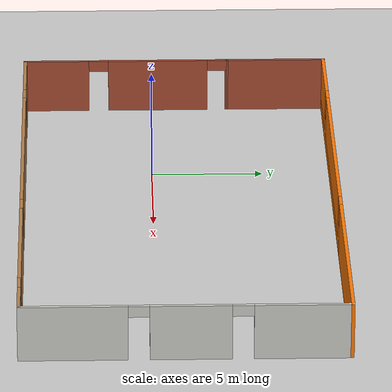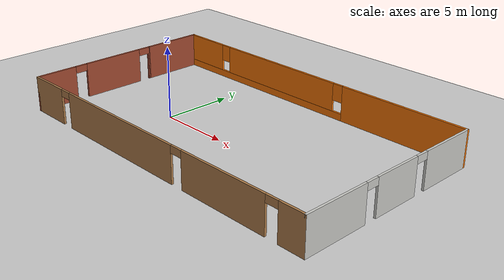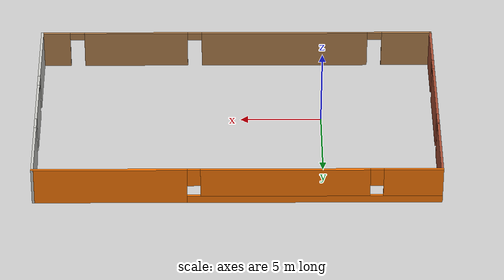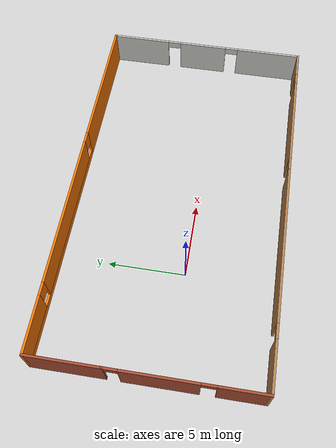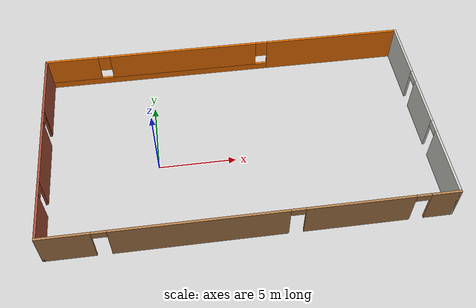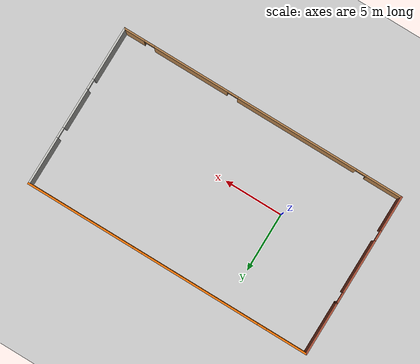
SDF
<sdf version="1.7">
 <world name="default">
  <light name="sun" type="directional">
   <pose>0 0 10 0 -0 0</pose>
   <diffuse>0.8 0.8 0.8 1</diffuse>
   <specular>0.2 0.2 0.2 1</specular>
   <attenuation>
    <range>1000</range>
    <constant>0.9</constant>
    <linear>0.01</linear>
    <quadratic>0.001</quadratic>
   </attenuation>
   <direction>-0.5 0.1 -0.9</direction>
   <spot><inner_angle>0</inner_angle><outer_angle>0</outer_angle><falloff>0</falloff></spot>
  </light>
  <model name="ground_plane">
   <static>1</static>
   <link name="link">
    <collision name="collision">
     <geometry><plane><normal>0 0 1</normal><size>100 100</size></plane></geometry>
     <surface><friction><ode><mu>100</mu><mu2>50</mu2></ode></friction></surface>
    </collision>
    <visual name="visual">
     <cast_shadows>0</cast_shadows>
     <geometry><plane><normal>0 0 1</normal><size>100 100</size></plane></geometry>
     <material>
      <script><uri>file://media/materials/scripts/gazebo.material</uri><name>Gazebo/Grey</name></script>
     </material>
    </visual>
   </link>
  </model>
  <gravity>0 0 -9.8</gravity>
  <magnetic_field>6e-06 2.3e-05 -4.2e-05</magnetic_field>
  <atmosphere type="adiabatic"/>
  <physics type="ode">
   <max_step_size>0.001</max_step_size>
   <real_time_factor>1</real_time_factor>
   <real_time_update_rate>1000</real_time_update_rate>
  </physics>
  <scene><ambient>0.4 0.4 0.4 1</ambient><background>0.7 0.7 0.7 1</background><shadows>1</shadows></scene>
  <audio><device>default</device></audio>
  <spherical_coordinates>
   <surface_model>EARTH_WGS84</surface_model>
   <latitude_deg>0</latitude_deg>
   <longitude_deg>0</longitude_deg>
   <elevation>0</elevation>
   <heading_deg>0</heading_deg>
  </spherical_coordinates>
  <model name="Untitled">
   <pose>5.26504 1.15785 0 0 -0 0</pose>
   <link name="Wall_3">
    <pose>-12.3 -2.25 0 0 -0 -1.5708</pose>
    <visual name="Wall_3_Visual_0">
     <pose>-4.71369 0 1.25 0 -0 0</pose>
     <geometry><box><size>0.072627 0.15 2.5</size></box></geometry>
     <material>
      <script><uri>file://media/materials/scripts/gazebo.material</uri><name>Gazebo/Bricks</name></script>
      <ambient>1 1 1 1</ambient>
     </material>
     <meta><layer>0</layer></meta>
    </visual>
    <collision name="Wall_3_Collision_0">
     <geometry><box><size>0.072627 0.15 2.5</size></box></geometry>
     <pose>-4.71369 0 1.25 0 -0 0</pose>
    </collision>
    <visual name="Wall_3_Visual_1">
     <pose>-1.47639 0 1.25 0 -0 0</pose>
     <geometry><box><size>4.60196 0.15 2.5</size></box></geometry>
     <material>
      <script><uri>file://media/materials/scripts/gazebo.material</uri><name>Gazebo/Bricks</name></script>
      <ambient>1 1 1 1</ambient>
     </material>
     <meta><layer>0</layer></meta>
    </visual>
    <collision name="Wall_3_Collision_1">
     <geometry><box><size>4.60196 0.15 2.5</size></box></geometry>
     <pose>-1.47639 0 1.25 0 -0 0</pose>
    </collision>
    <visual name="Wall_3_Visual_2">
     <pose>3.23729 0 1.25 0 -0 0</pose>
     <geometry><box><size>3.02542 0.15 2.5</size></box></geometry>
     <material>
      <script><uri>file://media/materials/scripts/gazebo.material</uri><name>Gazebo/Bricks</name></script>
      <ambient>1 1 1 1</ambient>
     </material>
     <meta><layer>0</layer></meta>
    </visual>
    <collision name="Wall_3_Collision_2">
     <geometry><box><size>3.02542 0.15 2.5</size></box></geometry>
     <pose>3.23729 0 1.25 0 -0 0</pose>
    </collision>
    <visual name="Wall_3_Visual_3">
     <pose>-4.22737 0 2.25 0 -0 0</pose>
     <geometry><box><size>0.9 0.15 0.5</size></box></geometry>
     <material>
      <script><uri>file://media/materials/scripts/gazebo.material</uri><name>Gazebo/Bricks</name></script>
      <ambient>1 1 1 1</ambient>
     </material>
     <meta><layer>0</layer></meta>
    </visual>
    <collision name="Wall_3_Collision_3">
     <geometry><box><size>0.9 0.15 0.5</size></box></geometry>
     <pose>-4.22737 0 2.25 0 -0 0</pose>
    </collision>
    <visual name="Wall_3_Visual_4">
     <pose>1.27459 0 2.25 0 -0 0</pose>
     <geometry><box><size>0.9 0.15 0.5</size></box></geometry>
     <material>
      <script><uri>file://media/materials/scripts/gazebo.material</uri><name>Gazebo/Bricks</name></script>
      <ambient>1 1 1 1</ambient>
     </material>
     <meta><layer>0</layer></meta>
    </visual>
    <collision name="Wall_3_Collision_4">
     <geometry><box><size>0.9 0.15 0.5</size></box></geometry>
     <pose>1.27459 0 2.25 0 -0 0</pose>
    </collision>
   </link>
   <link name="Wall_4">
    <pose>-0 -6.925 0 0 -0 0</pose>
    <visual name="Wall_4_Visual_0">
     <pose>-10.7934 0 1.25 0 -0 0</pose>
     <geometry><box><size>3.1633 0.15 2.5</size></box></geometry>
     <material>
      <script><uri>file://media/materials/scripts/gazebo.material</uri><name>Gazebo/Wood</name></script>
      <ambient>1 1 1 1</ambient>
     </material>
     <meta><layer>0</layer></meta>
    </visual>
    <collision name="Wall_4_Collision_0">
     <geometry><box><size>3.1633 0.15 2.5</size></box></geometry>
     <pose>-10.7934 0 1.25 0 -0 0</pose>
    </collision>
    <visual name="Wall_4_Visual_1">
     <pose>-3.05747 0 1.25 0 -0 0</pose>
     <geometry><box><size>10.5085 0.15 2.5</size></box></geometry>
     <material>
      <script><uri>file://media/materials/scripts/gazebo.material</uri><name>Gazebo/Wood</name></script>
      <ambient>1 1 1 1</ambient>
     </material>
     <meta><layer>0</layer></meta>
    </visual>
    <collision name="Wall_4_Collision_1">
     <geometry><box><size>10.5085 0.15 2.5</size></box></geometry>
     <pose>-3.05747 0 1.25 0 -0 0</pose>
    </collision>
    <visual name="Wall_4_Visual_2">
     <pose>6.36868 0 1.25 0 -0 0</pose>
     <geometry><box><size>6.54383 0.15 2.5</size></box></geometry>
     <material>
      <script><uri>file://media/materials/scripts/gazebo.material</uri><name>Gazebo/Wood</name></script>
      <ambient>1 1 1 1</ambient>
     </material>
     <meta><layer>0</layer></meta>
    </visual>
    <collision name="Wall_4_Collision_2">
     <geometry><box><size>6.54383 0.15 2.5</size></box></geometry>
     <pose>6.36868 0 1.25 0 -0 0</pose>
    </collision>
    <visual name="Wall_4_Visual_3">
     <pose>11.4578 0 1.25 0 -0 0</pose>
     <geometry><box><size>1.83441 0.15 2.5</size></box></geometry>
     <material>
      <script><uri>file://media/materials/scripts/gazebo.material</uri><name>Gazebo/Wood</name></script>
      <ambient>1 1 1 1</ambient>
     </material>
     <meta><layer>0</layer></meta>
    </visual>
    <collision name="Wall_4_Collision_3">
     <geometry><box><size>1.83441 0.15 2.5</size></box></geometry>
     <pose>11.4578 0 1.25 0 -0 0</pose>
    </collision>
    <visual name="Wall_4_Visual_4">
     <pose>-8.7617 0 2.25 0 -0 0</pose>
     <geometry><box><size>0.9 0.15 0.5</size></box></geometry>
     <material>
      <script><uri>file://media/materials/scripts/gazebo.material</uri><name>Gazebo/Wood</name></script>
      <ambient>1 1 1 1</ambient>
     </material>
     <meta><layer>0</layer></meta>
    </visual>
    <collision name="Wall_4_Collision_4">
     <geometry><box><size>0.9 0.15 0.5</size></box></geometry>
     <pose>-8.7617 0 2.25 0 -0 0</pose>
    </collision>
    <visual name="Wall_4_Visual_5">
     <pose>2.64677 0 2.25 0 -0 0</pose>
     <geometry><box><size>0.9 0.15 0.5</size></box></geometry>
     <material>
      <script><uri>file://media/materials/scripts/gazebo.material</uri><name>Gazebo/Wood</name></script>
      <ambient>1 1 1 1</ambient>
     </material>
     <meta><layer>0</layer></meta>
    </visual>
    <collision name="Wall_4_Collision_5">
     <geometry><box><size>0.9 0.15 0.5</size></box></geometry>
     <pose>2.64677 0 2.25 0 -0 0</pose>
    </collision>
    <visual name="Wall_4_Visual_6">
     <pose>10.0906 0 2.25 0 -0 0</pose>
     <geometry><box><size>0.9 0.15 0.5</size></box></geometry>
     <material>
      <script><uri>file://media/materials/scripts/gazebo.material</uri><name>Gazebo/Wood</name></script>
      <ambient>1 1 1 1</ambient>
     </material>
     <meta><layer>0</layer></meta>
    </visual>
    <collision name="Wall_4_Collision_6">
     <geometry><box><size>0.9 0.15 0.5</size></box></geometry>
     <pose>10.0906 0 2.25 0 -0 0</pose>
    </collision>
   </link>
   <link name="Wall_5">
    <pose>12.3 0 0 0 -0 1.5708</pose>
    <visual name="Wall_5_Visual_0">
     <pose>-4.69841 0 1.25 0 -0 0</pose>
     <geometry><box><size>4.60318 0.15 2.5</size></box></geometry>
     <material>
      <script><uri>file://media/materials/scripts/gazebo.material</uri><name>Gazebo/CeilingTiled</name></script>
      <ambient>0.435294 0.796078 0.67451 1</ambient>
     </material>
     <meta><layer>0</layer></meta>
    </visual>
    <collision name="Wall_5_Collision_0">
     <geometry><box><size>4.60318 0.15 2.5</size></box></geometry>
     <pose>-4.69841 0 1.25 0 -0 0</pose>
    </collision>
    <visual name="Wall_5_Visual_1">
     <pose>0.217556 0 1.25 0 -0 0</pose>
     <geometry><box><size>3.42875 0.15 2.5</size></box></geometry>
     <material>
      <script><uri>file://media/materials/scripts/gazebo.material</uri><name>Gazebo/CeilingTiled</name></script>
      <ambient>0.435294 0.796078 0.67451 1</ambient>
     </material>
     <meta><layer>0</layer></meta>
    </visual>
    <collision name="Wall_5_Collision_1">
     <geometry><box><size>3.42875 0.15 2.5</size></box></geometry>
     <pose>0.217556 0 1.25 0 -0 0</pose>
    </collision>
    <visual name="Wall_5_Visual_2">
     <pose>4.91596 0 1.25 0 -0 0</pose>
     <geometry><box><size>4.16807 0.15 2.5</size></box></geometry>
     <material>
      <script><uri>file://media/materials/scripts/gazebo.material</uri><name>Gazebo/CeilingTiled</name></script>
      <ambient>0.435294 0.796078 0.67451 1</ambient>
     </material>
     <meta><layer>0</layer></meta>
    </visual>
    <collision name="Wall_5_Collision_2">
     <geometry><box><size>4.16807 0.15 2.5</size></box></geometry>
     <pose>4.91596 0 1.25 0 -0 0</pose>
    </collision>
    <visual name="Wall_5_Visual_3">
     <pose>-1.94682 0 2.25 0 -0 0</pose>
     <geometry><box><size>0.9 0.15 0.5</size></box></geometry>
     <material>
      <script><uri>file://media/materials/scripts/gazebo.material</uri><name>Gazebo/CeilingTiled</name></script>
      <ambient>0.435294 0.796078 0.67451 1</ambient>
     </material>
     <meta><layer>0</layer></meta>
    </visual>
    <collision name="Wall_5_Collision_3">
     <geometry><box><size>0.9 0.15 0.5</size></box></geometry>
     <pose>-1.94682 0 2.25 0 -0 0</pose>
    </collision>
    <visual name="Wall_5_Visual_4">
     <pose>2.38193 0 2.25 0 -0 0</pose>
     <geometry><box><size>0.9 0.15 0.5</size></box></geometry>
     <material>
      <script><uri>file://media/materials/scripts/gazebo.material</uri><name>Gazebo/CeilingTiled</name></script>
      <ambient>0.435294 0.796078 0.67451 1</ambient>
     </material>
     <meta><layer>0</layer></meta>
    </visual>
    <collision name="Wall_5_Collision_4">
     <geometry><box><size>0.9 0.15 0.5</size></box></geometry>
     <pose>2.38193 0 2.25 0 -0 0</pose>
    </collision>
   </link>
   <link name="Wall_6">
    <pose>-0 6.925 0 0 -0 3.14159</pose>
    <visual name="Wall_6_Visual_0">
     <pose>-7.69066 0 1.25 0 -0 0</pose>
     <geometry><box><size>9.36869 0.15 2.5</size></box></geometry>
     <material>
      <script><uri>file://media/materials/scripts/gazebo.material</uri><name>Gazebo/Grey</name></script>
      <ambient>0.996078 0.47451 0.0196078 1</ambient>
     </material>
     <meta><layer>0</layer></meta>
    </visual>
    <collision name="Wall_6_Collision_0">
     <geometry><box><size>9.36869 0.15 2.5</size></box></geometry>
     <pose>-7.69066 0 1.25 0 -0 0</pose>
    </collision>
    <visual name="Wall_6_Visual_1">
     <pose>4.68434 0 0.25 0 -0 0</pose>
     <geometry><box><size>15.3813 0.15 0.5</size></box></geometry>
     <material>
      <script><uri>file://media/materials/scripts/gazebo.material</uri><name>Gazebo/Grey</name></script>
      <ambient>0.996078 0.47451 0.0196078 1</ambient>
     </material>
     <meta><layer>0</layer></meta>
    </visual>
    <collision name="Wall_6_Collision_1">
     <geometry><box><size>15.3813 0.15 0.5</size></box></geometry>
     <pose>4.68434 0 0.25 0 -0 0</pose>
    </collision>
    <visual name="Wall_6_Visual_2">
     <pose>2.89565 0 1.5 0 -0 0</pose>
     <geometry><box><size>10.2039 0.15 2</size></box></geometry>
     <material>
      <script><uri>file://media/materials/scripts/gazebo.material</uri><name>Gazebo/Grey</name></script>
      <ambient>0.996078 0.47451 0.0196078 1</ambient>
     </material>
     <meta><layer>0</layer></meta>
    </visual>
    <collision name="Wall_6_Collision_2">
     <geometry><box><size>10.2039 0.15 2</size></box></geometry>
     <pose>2.89565 0 1.5 0 -0 0</pose>
    </collision>
    <visual name="Wall_6_Visual_3">
     <pose>10.5863 0 1.5 0 -0 0</pose>
     <geometry><box><size>3.5774 0.15 2</size></box></geometry>
     <material>
      <script><uri>file://media/materials/scripts/gazebo.material</uri><name>Gazebo/Grey</name></script>
      <ambient>0.996078 0.47451 0.0196078 1</ambient>
     </material>
     <meta><layer>0</layer></meta>
    </visual>
    <collision name="Wall_6_Collision_3">
     <geometry><box><size>3.5774 0.15 2</size></box></geometry>
     <pose>10.5863 0 1.5 0 -0 0</pose>
    </collision>
    <visual name="Wall_6_Visual_4">
     <pose>-2.60631 0 1.9 0 -0 0</pose>
     <geometry><box><size>0.8 0.15 1.2</size></box></geometry>
     <material>
      <script><uri>file://media/materials/scripts/gazebo.material</uri><name>Gazebo/Grey</name></script>
      <ambient>0.996078 0.47451 0.0196078 1</ambient>
     </material>
     <meta><layer>0</layer></meta>
    </visual>
    <collision name="Wall_6_Collision_4">
     <geometry><box><size>0.8 0.15 1.2</size></box></geometry>
     <pose>-2.60631 0 1.9 0 -0 0</pose>
    </collision>
    <visual name="Wall_6_Visual_5">
     <pose>8.3976 0 1.9 0 -0 0</pose>
     <geometry><box><size>0.8 0.15 1.2</size></box></geometry>
     <material>
      <script><uri>file://media/materials/scripts/gazebo.material</uri><name>Gazebo/Grey</name></script>
      <ambient>0.996078 0.47451 0.0196078 1</ambient>
     </material>
     <meta><layer>0</layer></meta>
    </visual>
    <collision name="Wall_6_Collision_5">
     <geometry><box><size>0.8 0.15 1.2</size></box></geometry>
     <pose>8.3976 0 1.9 0 -0 0</pose>
    </collision>
   </link>
   <link name="Wall_7">
    <collision name="Wall_7_Collision">
     <geometry><box><size>4.65 0.15 2.5</size></box></geometry>
     <pose>0 0 1.25 0 -0 0</pose>
    </collision>
    <visual name="Wall_7_Visual">
     <pose>0 0 1.25 0 -0 0</pose>
     <geometry><box><size>4.65 0.15 2.5</size></box></geometry>
     <material>
      <script><uri>file://media/materials/scripts/gazebo.material</uri><name>Gazebo/Bricks</name></script>
      <ambient>1 1 1 1</ambient>
     </material>
     <meta><layer>0</layer></meta>
    </visual>
    <pose>-12.3 4.675 0 0 -0 -1.5708</pose>
   </link>
   <static>1</static>
  </model>
 </world>
</sdf>
